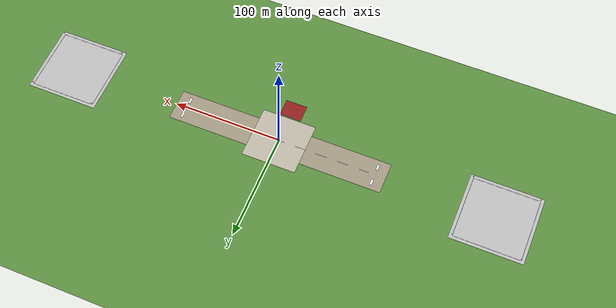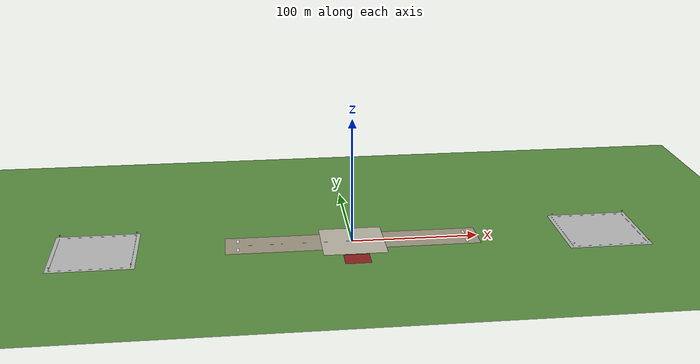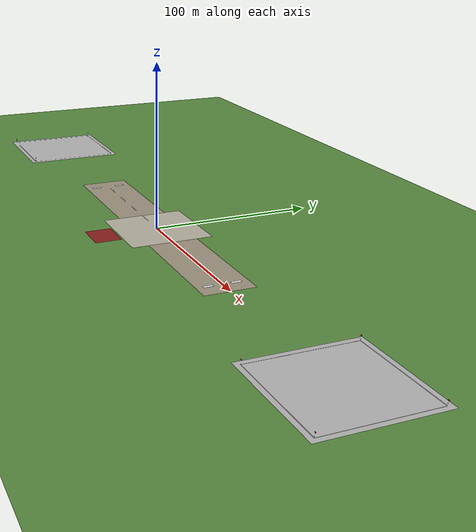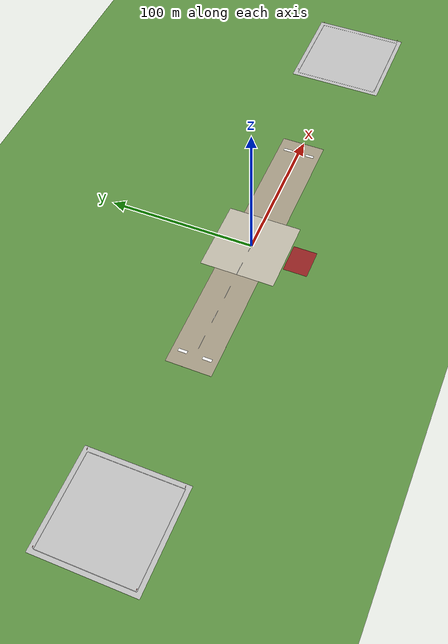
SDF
<sdf version="1.9">
 <world name="cuadc_recon_strike_r1">
  <model name="ground_plane">
   <static>true</static>
   <link name="link">
    <collision name="collision">
     <geometry><plane><normal>0 0 1</normal><size>1 1</size></plane></geometry>
     <surface>
      <friction><ode><mu>0.6</mu><mu2>0.6</mu2></ode></friction>
      <contact><collide_bitmask>65535</collide_bitmask><ode><min_depth>0.005</min_depth><kp>1e8</kp></ode></contact>
     </surface>
    </collision>
    <visual name="visual">
     <cast_shadows>false</cast_shadows>
     <geometry><plane><normal>0 0 1</normal><size>1400 1400</size></plane></geometry>
     <material>
      <diffuse>0.35 0.55 0.25 1</diffuse>
      <specular>0 0 0 1</specular>
      <emissive>0 0 0 1</emissive>
     </material>
    </visual>
   </link>
  </model>
  <model name="cuadc_field_markings">
   <static>true</static>
   <link name="link">
    <visual name="runway">
     <pose>0 0 0.01 0 0 0</pose>
     <geometry><box><size>200 30 0.004</size></box></geometry>
     <material>
      <diffuse>0.62 0.58 0.5 1</diffuse>
      <specular>0.05 0.05 0.05 1</specular>
      <emissive>0 0 0 1</emissive>
     </material>
    </visual>
    <visual name="landing_zone">
     <pose>0 0 0.03 0 0 0</pose>
     <geometry><box><size>50 50 0.004</size></box></geometry>
     <material>
      <diffuse>0.72 0.7 0.64 1</diffuse>
      <specular>0.05 0.05 0.05 1</specular>
      <emissive>0 0 0 1</emissive>
     </material>
    </visual>
    <visual name="centerline_1">
     <pose>-80 0 0.07 0 0 0</pose>
     <geometry><box><size>10 0.3 0.004</size></box></geometry>
     <material>
      <diffuse>0.92 0.92 0.92 1</diffuse>
      <specular>0.05 0.05 0.05 1</specular>
      <emissive>0 0 0 1</emissive>
     </material>
    </visual>
    <visual name="centerline_2">
     <pose>-60 0 0.07 0 0 0</pose>
     <geometry><box><size>10 0.3 0.004</size></box></geometry>
     <material>
      <diffuse>0.92 0.92 0.92 1</diffuse>
      <specular>0.05 0.05 0.05 1</specular>
      <emissive>0 0 0 1</emissive>
     </material>
    </visual>
    <visual name="centerline_3">
     <pose>-40 0 0.07 0 0 0</pose>
     <geometry><box><size>10 0.3 0.004</size></box></geometry>
     <material>
      <diffuse>0.92 0.92 0.92 1</diffuse>
      <specular>0.05 0.05 0.05 1</specular>
      <emissive>0 0 0 1</emissive>
     </material>
    </visual>
    <visual name="centerline_4">
     <pose>-20 0 0.07 0 0 0</pose>
     <geometry><box><size>10 0.3 0.004</size></box></geometry>
     <material>
      <diffuse>0.92 0.92 0.92 1</diffuse>
      <specular>0.05 0.05 0.05 1</specular>
      <emissive>0 0 0 1</emissive>
     </material>
    </visual>
    <visual name="centerline_5">
     <pose>0 0 0.07 0 0 0</pose>
     <geometry><box><size>10 0.3 0.004</size></box></geometry>
     <material>
      <diffuse>0.92 0.92 0.92 1</diffuse>
      <specular>0.05 0.05 0.05 1</specular>
      <emissive>0 0 0 1</emissive>
     </material>
    </visual>
    <visual name="centerline_6">
     <pose>20 0 0.07 0 0 0</pose>
     <geometry><box><size>10 0.3 0.004</size></box></geometry>
     <material>
      <diffuse>0.92 0.92 0.92 1</diffuse>
      <specular>0.05 0.05 0.05 1</specular>
      <emissive>0 0 0 1</emissive>
     </material>
    </visual>
    <visual name="centerline_7">
     <pose>40 0 0.07 0 0 0</pose>
     <geometry><box><size>10 0.3 0.004</size></box></geometry>
     <material>
      <diffuse>0.92 0.92 0.92 1</diffuse>
      <specular>0.05 0.05 0.05 1</specular>
      <emissive>0 0 0 1</emissive>
     </material>
    </visual>
    <visual name="centerline_8">
     <pose>60 0 0.07 0 0 0</pose>
     <geometry><box><size>10 0.3 0.004</size></box></geometry>
     <material>
      <diffuse>0.92 0.92 0.92 1</diffuse>
      <specular>0.05 0.05 0.05 1</specular>
      <emissive>0 0 0 1</emissive>
     </material>
    </visual>
    <visual name="centerline_9">
     <pose>80 0 0.07 0 0 0</pose>
     <geometry><box><size>10 0.3 0.004</size></box></geometry>
     <material>
      <diffuse>0.92 0.92 0.92 1</diffuse>
      <specular>0.05 0.05 0.05 1</specular>
      <emissive>0 0 0 1</emissive>
     </material>
    </visual>
    <visual name="threshold_w_s">
     <pose>-90 -8 0.07 0 0 0</pose>
     <geometry><box><size>2 6 0.004</size></box></geometry>
     <material>
      <diffuse>0.92 0.92 0.92 1</diffuse>
      <specular>0.05 0.05 0.05 1</specular>
      <emissive>0 0 0 1</emissive>
     </material>
    </visual>
    <visual name="threshold_w_n">
     <pose>-90 8 0.07 0 0 0</pose>
     <geometry><box><size>2 6 0.004</size></box></geometry>
     <material>
      <diffuse>0.92 0.92 0.92 1</diffuse>
      <specular>0.05 0.05 0.05 1</specular>
      <emissive>0 0 0 1</emissive>
     </material>
    </visual>
    <visual name="threshold_e_s">
     <pose>90 -8 0.07 0 0 0</pose>
     <geometry><box><size>2 6 0.004</size></box></geometry>
     <material>
      <diffuse>0.92 0.92 0.92 1</diffuse>
      <specular>0.05 0.05 0.05 1</specular>
      <emissive>0 0 0 1</emissive>
     </material>
    </visual>
    <visual name="threshold_e_n">
     <pose>90 8 0.07 0 0 0</pose>
     <geometry><box><size>2 6 0.004</size></box></geometry>
     <material>
      <diffuse>0.92 0.92 0.92 1</diffuse>
      <specular>0.05 0.05 0.05 1</specular>
      <emissive>0 0 0 1</emissive>
     </material>
    </visual>
    <visual name="control_zone">
     <pose>0 -34 0.05 0 0 0</pose>
     <geometry><box><size>20 16 0.004</size></box></geometry>
     <material>
      <diffuse>0.55 0.12 0.12 1</diffuse>
      <specular>0.05 0.05 0.05 1</specular>
      <emissive>0 0 0 1</emissive>
     </material>
    </visual>
    <visual name="zone_a_ground">
     <pose>200 0 0.006 0 0 0</pose>
     <geometry><mesh><uri>materials/meshes/sheet_ground_soil.obj</uri><scale>66 66 1</scale></mesh></geometry>
    </visual>
    <visual name="zone_a_line_w">
     <pose>170 0 0.03 0 0 0</pose>
     <geometry><box><size>0.25 59.5 0.004</size></box></geometry>
     <material>
      <diffuse>0.95 0.95 0.95 1</diffuse>
      <specular>0.05 0.05 0.05 1</specular>
      <emissive>0 0 0 1</emissive>
     </material>
    </visual>
    <visual name="zone_a_line_e">
     <pose>230 0 0.03 0 0 0</pose>
     <geometry><box><size>0.25 59.5 0.004</size></box></geometry>
     <material>
      <diffuse>0.95 0.95 0.95 1</diffuse>
      <specular>0.05 0.05 0.05 1</specular>
      <emissive>0 0 0 1</emissive>
     </material>
    </visual>
    <visual name="zone_a_line_s">
     <pose>200 -30 0.03 0 0 0</pose>
     <geometry><box><size>60 0.25 0.004</size></box></geometry>
     <material>
      <diffuse>0.95 0.95 0.95 1</diffuse>
      <specular>0.05 0.05 0.05 1</specular>
      <emissive>0 0 0 1</emissive>
     </material>
    </visual>
    <visual name="zone_a_line_n">
     <pose>200 30 0.03 0 0 0</pose>
     <geometry><box><size>60 0.25 0.004</size></box></geometry>
     <material>
      <diffuse>0.95 0.95 0.95 1</diffuse>
      <specular>0.05 0.05 0.05 1</specular>
      <emissive>0 0 0 1</emissive>
     </material>
    </visual>
    <visual name="flag_a_sw_pole">
     <pose>170 -30 1.5 0 0 0</pose>
     <geometry><cylinder><radius>0.03</radius><length>3</length></cylinder></geometry>
     <material>
      <diffuse>0.9 0.9 0.9 1</diffuse>
      <specular>0.05 0.05 0.05 1</specular>
      <emissive>0 0 0 1</emissive>
     </material>
    </visual>
    <visual name="flag_a_sw_pennant">
     <pose>170.45 -30 2.7 0 0 0</pose>
     <geometry><box><size>0.9 0.03 0.6</size></box></geometry>
     <material>
      <diffuse>0.8 0.1 0.1 1</diffuse>
      <specular>0.05 0.05 0.05 1</specular>
      <emissive>0 0 0 1</emissive>
     </material>
    </visual>
    <collision name="flag_a_sw_collision">
     <pose>170 -30 1.5 0 0 0</pose>
     <geometry><cylinder><radius>0.03</radius><length>3</length></cylinder></geometry>
    </collision>
    <visual name="flag_a_se_pole">
     <pose>230 -30 1.5 0 0 0</pose>
     <geometry><cylinder><radius>0.03</radius><length>3</length></cylinder></geometry>
     <material>
      <diffuse>0.9 0.9 0.9 1</diffuse>
      <specular>0.05 0.05 0.05 1</specular>
      <emissive>0 0 0 1</emissive>
     </material>
    </visual>
    <visual name="flag_a_se_pennant">
     <pose>230.45 -30 2.7 0 0 0</pose>
     <geometry><box><size>0.9 0.03 0.6</size></box></geometry>
     <material>
      <diffuse>0.8 0.1 0.1 1</diffuse>
      <specular>0.05 0.05 0.05 1</specular>
      <emissive>0 0 0 1</emissive>
     </material>
    </visual>
    <collision name="flag_a_se_collision">
     <pose>230 -30 1.5 0 0 0</pose>
     <geometry><cylinder><radius>0.03</radius><length>3</length></cylinder></geometry>
    </collision>
    <visual name="flag_a_nw_pole">
     <pose>170 30 1.5 0 0 0</pose>
     <geometry><cylinder><radius>0.03</radius><length>3</length></cylinder></geometry>
     <material>
      <diffuse>0.9 0.9 0.9 1</diffuse>
      <specular>0.05 0.05 0.05 1</specular>
      <emissive>0 0 0 1</emissive>
     </material>
    </visual>
    <visual name="flag_a_nw_pennant">
     <pose>170.45 30 2.7 0 0 0</pose>
     <geometry><box><size>0.9 0.03 0.6</size></box></geometry>
     <material>
      <diffuse>0.8 0.1 0.1 1</diffuse>
      <specular>0.05 0.05 0.05 1</specular>
      <emissive>0 0 0 1</emissive>
     </material>
    </visual>
    <collision name="flag_a_nw_collision">
     <pose>170 30 1.5 0 0 0</pose>
     <geometry><cylinder><radius>0.03</radius><length>3</length></cylinder></geometry>
    </collision>
    <visual name="flag_a_ne_pole">
     <pose>230 30 1.5 0 0 0</pose>
     <geometry><cylinder><radius>0.03</radius><length>3</length></cylinder></geometry>
     <material>
      <diffuse>0.9 0.9 0.9 1</diffuse>
      <specular>0.05 0.05 0.05 1</specular>
      <emissive>0 0 0 1</emissive>
     </material>
    </visual>
    <visual name="flag_a_ne_pennant">
     <pose>230.45 30 2.7 0 0 0</pose>
     <geometry><box><size>0.9 0.03 0.6</size></box></geometry>
     <material>
      <diffuse>0.8 0.1 0.1 1</diffuse>
      <specular>0.05 0.05 0.05 1</specular>
      <emissive>0 0 0 1</emissive>
     </material>
    </visual>
    <collision name="flag_a_ne_collision">
     <pose>230 30 1.5 0 0 0</pose>
     <geometry><cylinder><radius>0.03</radius><length>3</length></cylinder></geometry>
    </collision>
    <visual name="zone_b_ground">
     <pose>-200 0 0.006 0 0 0</pose>
     <geometry>
      <mesh><uri>materials/meshes/sheet_ground_concrete_old.obj</uri><scale>66 66 1</scale></mesh>
     </geometry>
    </visual>
    <visual name="zone_b_line_w">
     <pose>-230 0 0.03 0 0 0</pose>
     <geometry><box><size>0.25 59.5 0.004</size></box></geometry>
     <material>
      <diffuse>0.95 0.95 0.95 1</diffuse>
      <specular>0.05 0.05 0.05 1</specular>
      <emissive>0 0 0 1</emissive>
     </material>
    </visual>
    <visual name="zone_b_line_e">
     <pose>-170 0 0.03 0 0 0</pose>
     <geometry><box><size>0.25 59.5 0.004</size></box></geometry>
     <material>
      <diffuse>0.95 0.95 0.95 1</diffuse>
      <specular>0.05 0.05 0.05 1</specular>
      <emissive>0 0 0 1</emissive>
     </material>
    </visual>
    <visual name="zone_b_line_s">
     <pose>-200 -30 0.03 0 0 0</pose>
     <geometry><box><size>60 0.25 0.004</size></box></geometry>
     <material>
      <diffuse>0.95 0.95 0.95 1</diffuse>
      <specular>0.05 0.05 0.05 1</specular>
      <emissive>0 0 0 1</emissive>
     </material>
    </visual>
    <visual name="zone_b_line_n">
     <pose>-200 30 0.03 0 0 0</pose>
     <geometry><box><size>60 0.25 0.004</size></box></geometry>
     <material>
      <diffuse>0.95 0.95 0.95 1</diffuse>
      <specular>0.05 0.05 0.05 1</specular>
      <emissive>0 0 0 1</emissive>
     </material>
    </visual>
    <visual name="flag_b_sw_pole">
     <pose>-230 -30 1.5 0 0 0</pose>
     <geometry><cylinder><radius>0.03</radius><length>3</length></cylinder></geometry>
     <material>
      <diffuse>0.9 0.9 0.9 1</diffuse>
      <specular>0.05 0.05 0.05 1</specular>
      <emissive>0 0 0 1</emissive>
     </material>
    </visual>
    <visual name="flag_b_sw_pennant">
     <pose>-229.55 -30 2.7 0 0 0</pose>
     <geometry><box><size>0.9 0.03 0.6</size></box></geometry>
     <material>
      <diffuse>0.8 0.1 0.1 1</diffuse>
      <specular>0.05 0.05 0.05 1</specular>
      <emissive>0 0 0 1</emissive>
     </material>
    </visual>
    <collision name="flag_b_sw_collision">
     <pose>-230 -30 1.5 0 0 0</pose>
     <geometry><cylinder><radius>0.03</radius><length>3</length></cylinder></geometry>
    </collision>
    <visual name="flag_b_se_pole">
     <pose>-170 -30 1.5 0 0 0</pose>
     <geometry><cylinder><radius>0.03</radius><length>3</length></cylinder></geometry>
     <material>
      <diffuse>0.9 0.9 0.9 1</diffuse>
      <specular>0.05 0.05 0.05 1</specular>
      <emissive>0 0 0 1</emissive>
     </material>
    </visual>
    <visual name="flag_b_se_pennant">
     <pose>-169.55 -30 2.7 0 0 0</pose>
     <geometry><box><size>0.9 0.03 0.6</size></box></geometry>
     <material>
      <diffuse>0.8 0.1 0.1 1</diffuse>
      <specular>0.05 0.05 0.05 1</specular>
      <emissive>0 0 0 1</emissive>
     </material>
    </visual>
    <collision name="flag_b_se_collision">
     <pose>-170 -30 1.5 0 0 0</pose>
     <geometry><cylinder><radius>0.03</radius><length>3</length></cylinder></geometry>
    </collision>
    <visual name="flag_b_nw_pole">
     <pose>-230 30 1.5 0 0 0</pose>
     <geometry><cylinder><radius>0.03</radius><length>3</length></cylinder></geometry>
     <material>
      <diffuse>0.9 0.9 0.9 1</diffuse>
      <specular>0.05 0.05 0.05 1</specular>
      <emissive>0 0 0 1</emissive>
     </material>
    </visual>
    <visual name="flag_b_nw_pennant">
     <pose>-229.55 30 2.7 0 0 0</pose>
     <geometry><box><size>0.9 0.03 0.6</size></box></geometry>
     <material>
      <diffuse>0.8 0.1 0.1 1</diffuse>
      <specular>0.05 0.05 0.05 1</specular>
      <emissive>0 0 0 1</emissive>
     </material>
    </visual>
    <collision name="flag_b_nw_collision">
     <pose>-230 30 1.5 0 0 0</pose>
     <geometry><cylinder><radius>0.03</radius><length>3</length></cylinder></geometry>
    </collision>
    <visual name="flag_b_ne_pole">
     <pose>-170 30 1.5 0 0 0</pose>
     <geometry><cylinder><radius>0.03</radius><length>3</length></cylinder></geometry>
     <material>
      <diffuse>0.9 0.9 0.9 1</diffuse>
      <specular>0.05 0.05 0.05 1</specular>
      <emissive>0 0 0 1</emissive>
     </material>
    </visual>
    <visual name="flag_b_ne_pennant">
     <pose>-169.55 30 2.7 0 0 0</pose>
     <geometry><box><size>0.9 0.03 0.6</size></box></geometry>
     <material>
      <diffuse>0.8 0.1 0.1 1</diffuse>
      <specular>0.05 0.05 0.05 1</specular>
      <emissive>0 0 0 1</emissive>
     </material>
    </visual>
    <collision name="flag_b_ne_collision">
     <pose>-170 30 1.5 0 0 0</pose>
     <geometry><cylinder><radius>0.03</radius><length>3</length></cylinder></geometry>
    </collision>
   </link>
  </model>
 </world>
</sdf>
